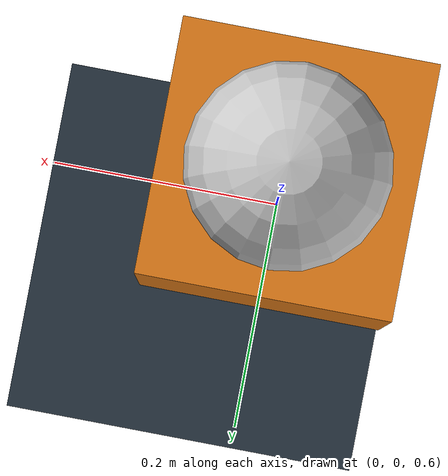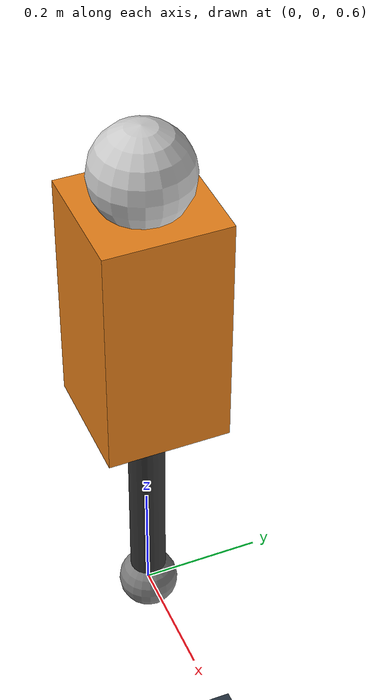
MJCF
<mujoco model="pogo_bot">
    <compiler angle="degree" coordinate="local" inertiafromgeom="true"/>

    <option gravity="0 0 -9.81" timestep="0.002"/>

    <asset>
        <texture name="texplane" type="2d" builtin="checker" rgb1=".2 .3 .4" rgb2=".1 .1 .1" width="512" height="512"/>
        <material name="matplane" texture="texplane" texrepeat="1 1" texuniform="true"/>
        <material name="robot_metal" rgba="0.9 0.5 0.1 1" shininess="1"/>
    </asset>

    <worldbody>
        <light pos="0 0 3" dir="0 0 -1" diffuse="0.8 0.8 0.8"/>
        <geom name="floor" type="plane" size="0 0 .05" material="matplane"/>

        <body name="torso" pos="0 0 1.2">
            <freejoint name="root"/>
            <geom name="torso_geom" type="box" size="0.1 0.1 0.2" material="robot_metal"/>
            <geom name="head" type="sphere" size="0.08" pos="0 0 0.25" rgba="0.8 0.8 0.8 1"/>

            <!-- 添加的站点 -->
            <site name="torso_site" pos="0 0 0" size="0.01"/>
            <body name="leg" pos="0 0 -0.2">
                <joint name="leg_slide" type="slide" axis="0 0 1" range="-0.3 0" limited="true" stiffness="500" damping="10"/>
                <geom name="leg_geom" type="capsule" size="0.03" fromto="0 0 0 0 0 -0.4" rgba="0.2 0.2 0.2 1"/>

                <body name="foot" pos="0 0 -0.4">
                    <geom name="foot_geom" type="sphere" size="0.05" friction="1.5 0.1 0.1"/>
                </body>
            </body>
        </body>
    </worldbody>

    <actuator>
        <position name="jump_motor" joint="leg_slide" kp="2000" ctrlrange="-0.3 0" forcerange="-500 500"/>
    </actuator>

    <sensor>
        <accelerometer name="torso_accel" site="torso_site"/>
        <jointpos name="leg_pos" joint="leg_slide"/>
    </sensor>
</mujoco>
